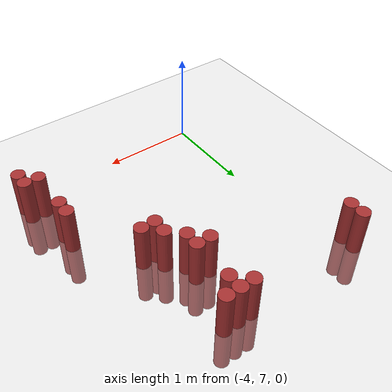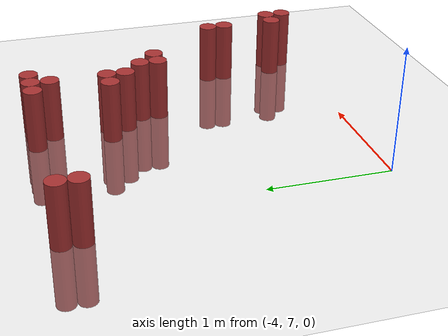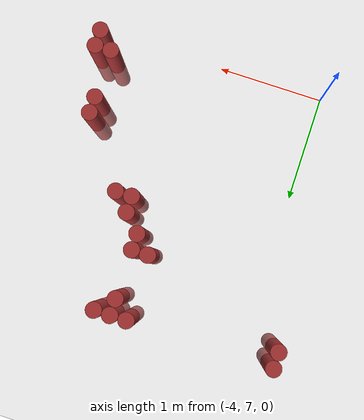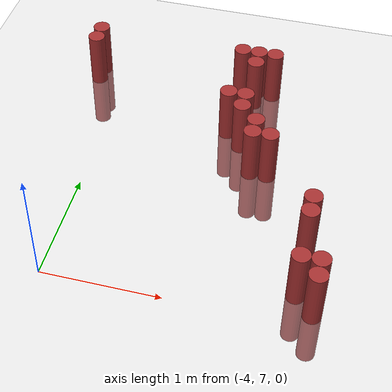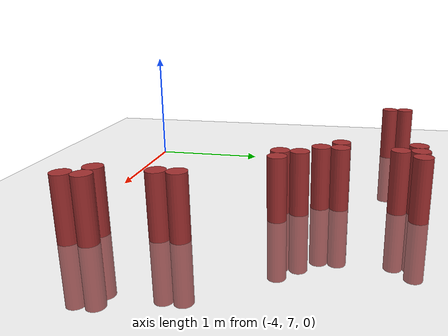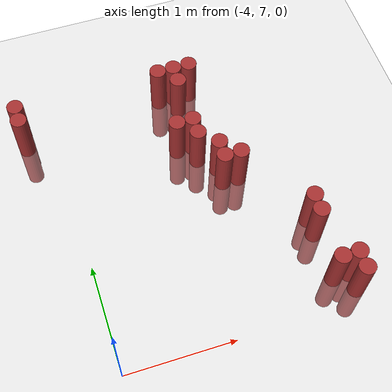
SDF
<sdf version="1.6">
 <world name="default">
  <model name="ground_plane">
   <static>1</static>
   <link name="link">
    <collision name="collision">
     <geometry><plane><normal>0 0 1</normal><size>100 100</size></plane></geometry>
     <surface><friction><ode><mu>100</mu><mu2>50</mu2></ode></friction></surface>
    </collision>
    <visual name="visual">
     <cast_shadows>0</cast_shadows>
     <geometry><plane><normal>0 0 1</normal><size>100 100</size></plane></geometry>
     <material>
      <script><uri>file://media/materials/scripts/gazebo.material</uri><name>Gazebo/Grey</name></script>
     </material>
    </visual>
   </link>
  </model>
  <model name="unit_cylinder_137">
   <static>1</static>
   <pose>-4.275000 9.375000 0.000000 0.000000 0.000000 0.000000</pose>
   <link name="link">
    <inertial>
     <mass>1</mass>
     <inertia><ixx>0.145833</ixx><ixy>0</ixy><ixz>0</ixz><iyy>0.145833</iyy><iyz>0</iyz><izz>0.125</izz></inertia>
    </inertial>
    <collision name="collision">
     <geometry><cylinder><radius>0.075000</radius><length>1</length></cylinder></geometry>
    </collision>
    <visual name="visual">
     <geometry><cylinder><radius>0.075000</radius><length>1</length></cylinder></geometry>
     <material>
      <ambient>0.648000 0.192000 0.192000 1</ambient>
      <diffuse>0.648000 0.192000 0.192000 1</diffuse>
     </material>
     <material>
      <script><name>Gazebo/Grey</name><uri>file://media/materials/scripts/gazebo.material</uri></script>
     </material>
    </visual>
   </link>
  </model>
  <model name="unit_cylinder_138">
   <static>1</static>
   <pose>-4.275000 9.525000 0.000000 0.000000 0.000000 0.000000</pose>
   <link name="link">
    <inertial>
     <mass>1</mass>
     <inertia><ixx>0.145833</ixx><ixy>0</ixy><ixz>0</ixz><iyy>0.145833</iyy><iyz>0</iyz><izz>0.125</izz></inertia>
    </inertial>
    <collision name="collision">
     <geometry><cylinder><radius>0.075000</radius><length>1</length></cylinder></geometry>
    </collision>
    <visual name="visual">
     <geometry><cylinder><radius>0.075000</radius><length>1</length></cylinder></geometry>
     <material>
      <ambient>0.648000 0.192000 0.192000 1</ambient>
      <diffuse>0.648000 0.192000 0.192000 1</diffuse>
     </material>
     <material>
      <script><name>Gazebo/Grey</name><uri>file://media/materials/scripts/gazebo.material</uri></script>
     </material>
    </visual>
   </link>
  </model>
  <model name="unit_cylinder_139">
   <static>1</static>
   <pose>-2.925000 8.925000 0.000000 0.000000 0.000000 0.000000</pose>
   <link name="link">
    <inertial>
     <mass>1</mass>
     <inertia><ixx>0.145833</ixx><ixy>0</ixy><ixz>0</ixz><iyy>0.145833</iyy><iyz>0</iyz><izz>0.125</izz></inertia>
    </inertial>
    <collision name="collision">
     <geometry><cylinder><radius>0.075000</radius><length>1</length></cylinder></geometry>
    </collision>
    <visual name="visual">
     <geometry><cylinder><radius>0.075000</radius><length>1</length></cylinder></geometry>
     <material>
      <ambient>0.648000 0.192000 0.192000 1</ambient>
      <diffuse>0.648000 0.192000 0.192000 1</diffuse>
     </material>
     <material>
      <script><name>Gazebo/Grey</name><uri>file://media/materials/scripts/gazebo.material</uri></script>
     </material>
    </visual>
   </link>
  </model>
  <model name="unit_cylinder_140">
   <static>1</static>
   <pose>-2.925000 9.525000 0.000000 0.000000 0.000000 0.000000</pose>
   <link name="link">
    <inertial>
     <mass>1</mass>
     <inertia><ixx>0.145833</ixx><ixy>0</ixy><ixz>0</ixz><iyy>0.145833</iyy><iyz>0</iyz><izz>0.125</izz></inertia>
    </inertial>
    <collision name="collision">
     <geometry><cylinder><radius>0.075000</radius><length>1</length></cylinder></geometry>
    </collision>
    <visual name="visual">
     <geometry><cylinder><radius>0.075000</radius><length>1</length></cylinder></geometry>
     <material>
      <ambient>0.648000 0.192000 0.192000 1</ambient>
      <diffuse>0.648000 0.192000 0.192000 1</diffuse>
     </material>
     <material>
      <script><name>Gazebo/Grey</name><uri>file://media/materials/scripts/gazebo.material</uri></script>
     </material>
    </visual>
   </link>
  </model>
  <model name="unit_cylinder_141">
   <static>1</static>
   <pose>-2.775000 8.775000 0.000000 0.000000 0.000000 0.000000</pose>
   <link name="link">
    <inertial>
     <mass>1</mass>
     <inertia><ixx>0.145833</ixx><ixy>0</ixy><ixz>0</ixz><iyy>0.145833</iyy><iyz>0</iyz><izz>0.125</izz></inertia>
    </inertial>
    <collision name="collision">
     <geometry><cylinder><radius>0.075000</radius><length>1</length></cylinder></geometry>
    </collision>
    <visual name="visual">
     <geometry><cylinder><radius>0.075000</radius><length>1</length></cylinder></geometry>
     <material>
      <ambient>0.648000 0.192000 0.192000 1</ambient>
      <diffuse>0.648000 0.192000 0.192000 1</diffuse>
     </material>
     <material>
      <script><name>Gazebo/Grey</name><uri>file://media/materials/scripts/gazebo.material</uri></script>
     </material>
    </visual>
   </link>
  </model>
  <model name="unit_cylinder_142">
   <static>1</static>
   <pose>-2.775000 8.925000 0.000000 0.000000 0.000000 0.000000</pose>
   <link name="link">
    <inertial>
     <mass>1</mass>
     <inertia><ixx>0.145833</ixx><ixy>0</ixy><ixz>0</ixz><iyy>0.145833</iyy><iyz>0</iyz><izz>0.125</izz></inertia>
    </inertial>
    <collision name="collision">
     <geometry><cylinder><radius>0.075000</radius><length>1</length></cylinder></geometry>
    </collision>
    <visual name="visual">
     <geometry><cylinder><radius>0.075000</radius><length>1</length></cylinder></geometry>
     <material>
      <ambient>0.648000 0.192000 0.192000 1</ambient>
      <diffuse>0.648000 0.192000 0.192000 1</diffuse>
     </material>
     <material>
      <script><name>Gazebo/Grey</name><uri>file://media/materials/scripts/gazebo.material</uri></script>
     </material>
    </visual>
   </link>
  </model>
  <model name="unit_cylinder_143">
   <static>1</static>
   <pose>-2.775000 9.375000 0.000000 0.000000 0.000000 0.000000</pose>
   <link name="link">
    <inertial>
     <mass>1</mass>
     <inertia><ixx>0.145833</ixx><ixy>0</ixy><ixz>0</ixz><iyy>0.145833</iyy><iyz>0</iyz><izz>0.125</izz></inertia>
    </inertial>
    <collision name="collision">
     <geometry><cylinder><radius>0.075000</radius><length>1</length></cylinder></geometry>
    </collision>
    <visual name="visual">
     <geometry><cylinder><radius>0.075000</radius><length>1</length></cylinder></geometry>
     <material>
      <ambient>0.648000 0.192000 0.192000 1</ambient>
      <diffuse>0.648000 0.192000 0.192000 1</diffuse>
     </material>
     <material>
      <script><name>Gazebo/Grey</name><uri>file://media/materials/scripts/gazebo.material</uri></script>
     </material>
    </visual>
   </link>
  </model>
  <model name="unit_cylinder_144">
   <static>1</static>
   <pose>-2.775000 9.525000 0.000000 0.000000 0.000000 0.000000</pose>
   <link name="link">
    <inertial>
     <mass>1</mass>
     <inertia><ixx>0.145833</ixx><ixy>0</ixy><ixz>0</ixz><iyy>0.145833</iyy><iyz>0</iyz><izz>0.125</izz></inertia>
    </inertial>
    <collision name="collision">
     <geometry><cylinder><radius>0.075000</radius><length>1</length></cylinder></geometry>
    </collision>
    <visual name="visual">
     <geometry><cylinder><radius>0.075000</radius><length>1</length></cylinder></geometry>
     <material>
      <ambient>0.648000 0.192000 0.192000 1</ambient>
      <diffuse>0.648000 0.192000 0.192000 1</diffuse>
     </material>
     <material>
      <script><name>Gazebo/Grey</name><uri>file://media/materials/scripts/gazebo.material</uri></script>
     </material>
    </visual>
   </link>
  </model>
  <model name="unit_cylinder_145">
   <static>1</static>
   <pose>-2.625000 8.475000 0.000000 0.000000 0.000000 0.000000</pose>
   <link name="link">
    <inertial>
     <mass>1</mass>
     <inertia><ixx>0.145833</ixx><ixy>0</ixy><ixz>0</ixz><iyy>0.145833</iyy><iyz>0</iyz><izz>0.125</izz></inertia>
    </inertial>
    <collision name="collision">
     <geometry><cylinder><radius>0.075000</radius><length>1</length></cylinder></geometry>
    </collision>
    <visual name="visual">
     <geometry><cylinder><radius>0.075000</radius><length>1</length></cylinder></geometry>
     <material>
      <ambient>0.648000 0.192000 0.192000 1</ambient>
      <diffuse>0.648000 0.192000 0.192000 1</diffuse>
     </material>
     <material>
      <script><name>Gazebo/Grey</name><uri>file://media/materials/scripts/gazebo.material</uri></script>
     </material>
    </visual>
   </link>
  </model>
  <model name="unit_cylinder_146">
   <static>1</static>
   <pose>-2.625000 8.625000 0.000000 0.000000 0.000000 0.000000</pose>
   <link name="link">
    <inertial>
     <mass>1</mass>
     <inertia><ixx>0.145833</ixx><ixy>0</ixy><ixz>0</ixz><iyy>0.145833</iyy><iyz>0</iyz><izz>0.125</izz></inertia>
    </inertial>
    <collision name="collision">
     <geometry><cylinder><radius>0.075000</radius><length>1</length></cylinder></geometry>
    </collision>
    <visual name="visual">
     <geometry><cylinder><radius>0.075000</radius><length>1</length></cylinder></geometry>
     <material>
      <ambient>0.648000 0.192000 0.192000 1</ambient>
      <diffuse>0.648000 0.192000 0.192000 1</diffuse>
     </material>
     <material>
      <script><name>Gazebo/Grey</name><uri>file://media/materials/scripts/gazebo.material</uri></script>
     </material>
    </visual>
   </link>
  </model>
  <model name="unit_cylinder_147">
   <static>1</static>
   <pose>-2.625000 9.525000 0.000000 0.000000 0.000000 0.000000</pose>
   <link name="link">
    <inertial>
     <mass>1</mass>
     <inertia><ixx>0.145833</ixx><ixy>0</ixy><ixz>0</ixz><iyy>0.145833</iyy><iyz>0</iyz><izz>0.125</izz></inertia>
    </inertial>
    <collision name="collision">
     <geometry><cylinder><radius>0.075000</radius><length>1</length></cylinder></geometry>
    </collision>
    <visual name="visual">
     <geometry><cylinder><radius>0.075000</radius><length>1</length></cylinder></geometry>
     <material>
      <ambient>0.648000 0.192000 0.192000 1</ambient>
      <diffuse>0.648000 0.192000 0.192000 1</diffuse>
     </material>
     <material>
      <script><name>Gazebo/Grey</name><uri>file://media/materials/scripts/gazebo.material</uri></script>
     </material>
    </visual>
   </link>
  </model>
  <model name="unit_cylinder_149">
   <static>1</static>
   <pose>-2.475000 8.475000 0.000000 0.000000 0.000000 0.000000</pose>
   <link name="link">
    <inertial>
     <mass>1</mass>
     <inertia><ixx>0.145833</ixx><ixy>0</ixy><ixz>0</ixz><iyy>0.145833</iyy><iyz>0</iyz><izz>0.125</izz></inertia>
    </inertial>
    <collision name="collision">
     <geometry><cylinder><radius>0.075000</radius><length>1</length></cylinder></geometry>
    </collision>
    <visual name="visual">
     <geometry><cylinder><radius>0.075000</radius><length>1</length></cylinder></geometry>
     <material>
      <ambient>0.648000 0.192000 0.192000 1</ambient>
      <diffuse>0.648000 0.192000 0.192000 1</diffuse>
     </material>
     <material>
      <script><name>Gazebo/Grey</name><uri>file://media/materials/scripts/gazebo.material</uri></script>
     </material>
    </visual>
   </link>
  </model>
  <model name="unit_cylinder_154">
   <static>1</static>
   <pose>-2.025000 7.275000 0.000000 0.000000 0.000000 0.000000</pose>
   <link name="link">
    <inertial>
     <mass>1</mass>
     <inertia><ixx>0.145833</ixx><ixy>0</ixy><ixz>0</ixz><iyy>0.145833</iyy><iyz>0</iyz><izz>0.125</izz></inertia>
    </inertial>
    <collision name="collision">
     <geometry><cylinder><radius>0.075000</radius><length>1</length></cylinder></geometry>
    </collision>
    <visual name="visual">
     <geometry><cylinder><radius>0.075000</radius><length>1</length></cylinder></geometry>
     <material>
      <ambient>0.648000 0.192000 0.192000 1</ambient>
      <diffuse>0.648000 0.192000 0.192000 1</diffuse>
     </material>
     <material>
      <script><name>Gazebo/Grey</name><uri>file://media/materials/scripts/gazebo.material</uri></script>
     </material>
    </visual>
   </link>
  </model>
  <model name="unit_cylinder_155">
   <static>1</static>
   <pose>-2.025000 7.725000 0.000000 0.000000 0.000000 0.000000</pose>
   <link name="link">
    <inertial>
     <mass>1</mass>
     <inertia><ixx>0.145833</ixx><ixy>0</ixy><ixz>0</ixz><iyy>0.145833</iyy><iyz>0</iyz><izz>0.125</izz></inertia>
    </inertial>
    <collision name="collision">
     <geometry><cylinder><radius>0.075000</radius><length>1</length></cylinder></geometry>
    </collision>
    <visual name="visual">
     <geometry><cylinder><radius>0.075000</radius><length>1</length></cylinder></geometry>
     <material>
      <ambient>0.648000 0.192000 0.192000 1</ambient>
      <diffuse>0.648000 0.192000 0.192000 1</diffuse>
     </material>
     <material>
      <script><name>Gazebo/Grey</name><uri>file://media/materials/scripts/gazebo.material</uri></script>
     </material>
    </visual>
   </link>
  </model>
  <model name="unit_cylinder_156">
   <static>1</static>
   <pose>-2.025000 7.875000 0.000000 0.000000 0.000000 0.000000</pose>
   <link name="link">
    <inertial>
     <mass>1</mass>
     <inertia><ixx>0.145833</ixx><ixy>0</ixy><ixz>0</ixz><iyy>0.145833</iyy><iyz>0</iyz><izz>0.125</izz></inertia>
    </inertial>
    <collision name="collision">
     <geometry><cylinder><radius>0.075000</radius><length>1</length></cylinder></geometry>
    </collision>
    <visual name="visual">
     <geometry><cylinder><radius>0.075000</radius><length>1</length></cylinder></geometry>
     <material>
      <ambient>0.648000 0.192000 0.192000 1</ambient>
      <diffuse>0.648000 0.192000 0.192000 1</diffuse>
     </material>
     <material>
      <script><name>Gazebo/Grey</name><uri>file://media/materials/scripts/gazebo.material</uri></script>
     </material>
    </visual>
   </link>
  </model>
  <model name="unit_cylinder_157">
   <static>1</static>
   <pose>-1.875000 7.125000 0.000000 0.000000 0.000000 0.000000</pose>
   <link name="link">
    <inertial>
     <mass>1</mass>
     <inertia><ixx>0.145833</ixx><ixy>0</ixy><ixz>0</ixz><iyy>0.145833</iyy><iyz>0</iyz><izz>0.125</izz></inertia>
    </inertial>
    <collision name="collision">
     <geometry><cylinder><radius>0.075000</radius><length>1</length></cylinder></geometry>
    </collision>
    <visual name="visual">
     <geometry><cylinder><radius>0.075000</radius><length>1</length></cylinder></geometry>
     <material>
      <ambient>0.648000 0.192000 0.192000 1</ambient>
      <diffuse>0.648000 0.192000 0.192000 1</diffuse>
     </material>
     <material>
      <script><name>Gazebo/Grey</name><uri>file://media/materials/scripts/gazebo.material</uri></script>
     </material>
    </visual>
   </link>
  </model>
  <model name="unit_cylinder_158">
   <static>1</static>
   <pose>-1.875000 7.275000 0.000000 0.000000 0.000000 0.000000</pose>
   <link name="link">
    <inertial>
     <mass>1</mass>
     <inertia><ixx>0.145833</ixx><ixy>0</ixy><ixz>0</ixz><iyy>0.145833</iyy><iyz>0</iyz><izz>0.125</izz></inertia>
    </inertial>
    <collision name="collision">
     <geometry><cylinder><radius>0.075000</radius><length>1</length></cylinder></geometry>
    </collision>
    <visual name="visual">
     <geometry><cylinder><radius>0.075000</radius><length>1</length></cylinder></geometry>
     <material>
      <ambient>0.648000 0.192000 0.192000 1</ambient>
      <diffuse>0.648000 0.192000 0.192000 1</diffuse>
     </material>
     <material>
      <script><name>Gazebo/Grey</name><uri>file://media/materials/scripts/gazebo.material</uri></script>
     </material>
    </visual>
   </link>
  </model>
 </world>
</sdf>
